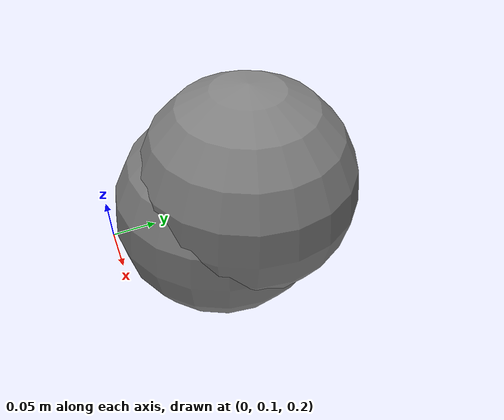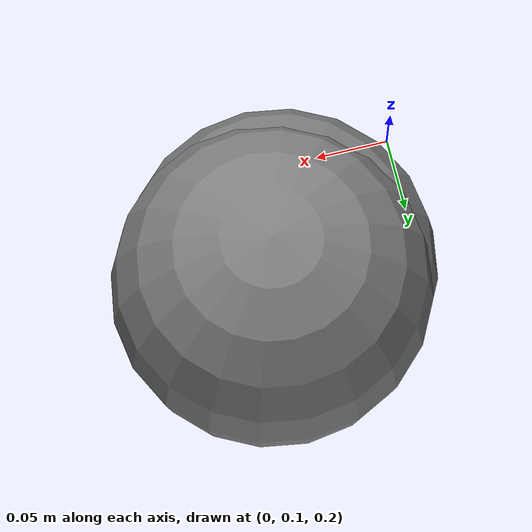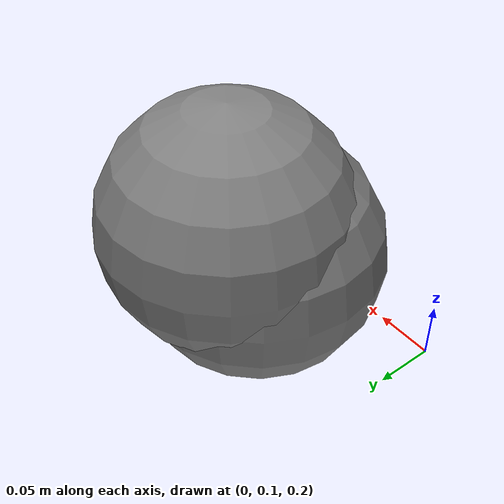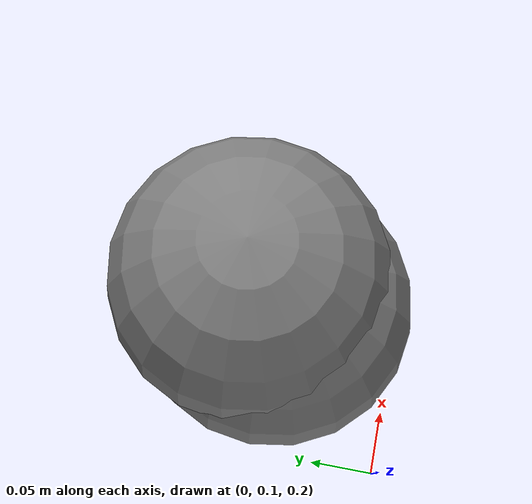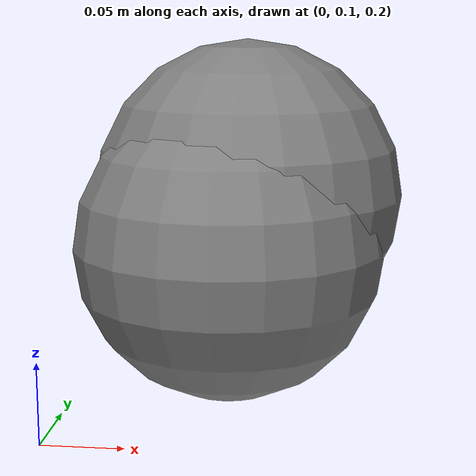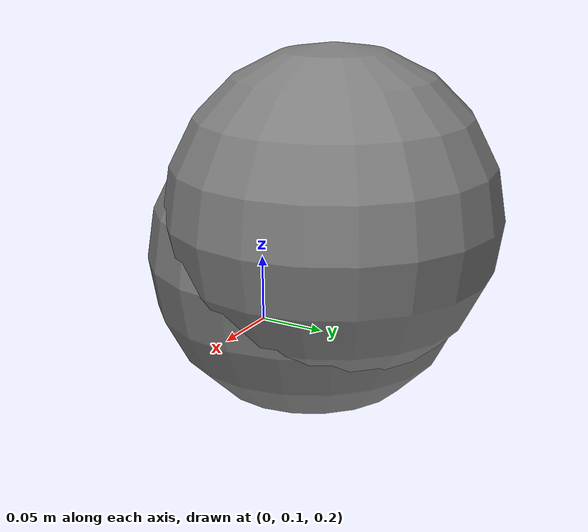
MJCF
<mujoco model="load save load test model with 2 frames">

  <worldbody>
    <frame name="frame1" pos=".1 .2 .3">

      <geom name="geom1" type="sphere" size=".1"/>
      <body name="root1">
        <geom type="sphere" size=".1"/>
      </body>

      <frame name="frame2" pos=".01 .02 .03">

        <geom name="geom2" type="sphere" size=".1"/>
        <body name="root2">
          <geom type="sphere" size=".1"/>
          <body name="root22">
            <geom type="sphere" size=".1"/>
          </body>
        </body>

        <geom name="geom3" type="sphere" size=".1"/>
        <body name="root3">
          <geom type="sphere" size=".1"/>
          <body name="root5">
            <geom type="sphere" size=".1"/>
          </body>
        </body>
      </frame> <!-- end frame1 -->
    </frame><!-- end frame2 -->
  </worldbody>
</mujoco>
